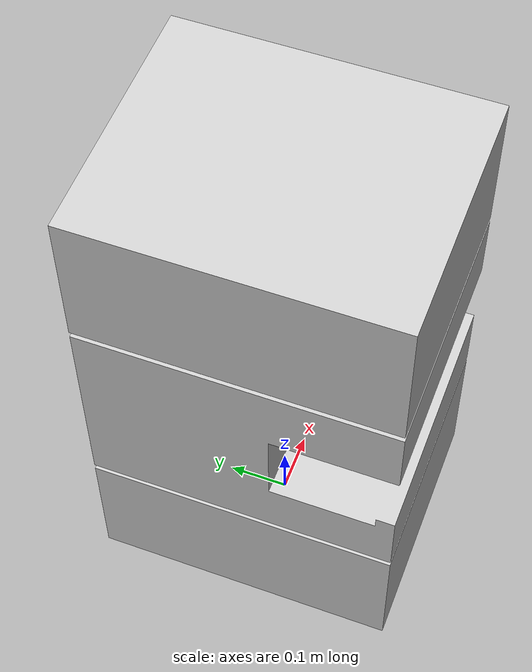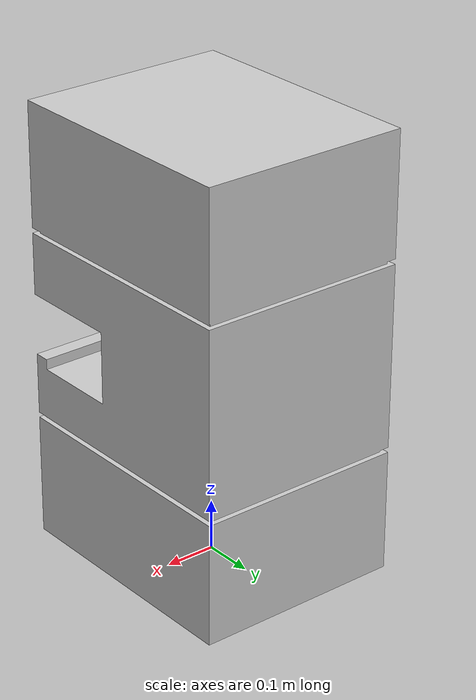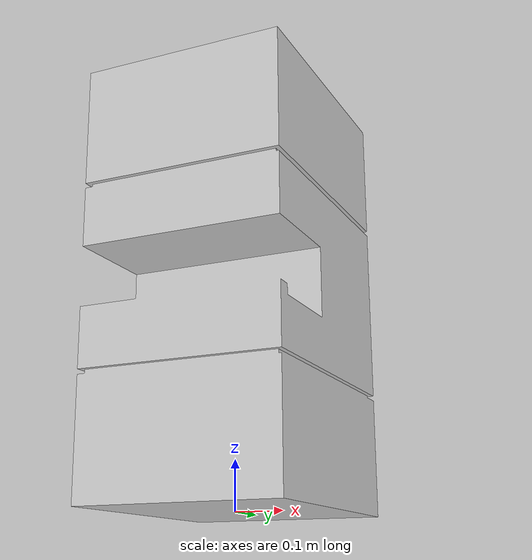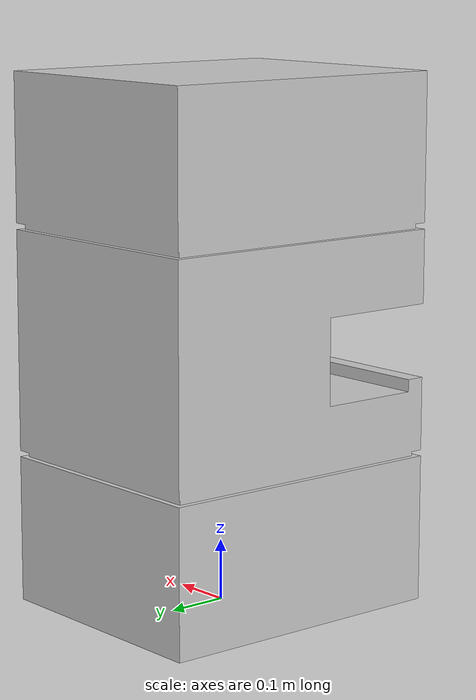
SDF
<?xml version="1.0" ?>
<sdf version="1.5">
  <model name="HPLC_box">
    <static>true</static>
    <link name="link">
      <visual name="visual">
        <geometry>
          <mesh>
            <uri>model://HPLC_box/meshes/HPLC_box.dae</uri>
          </mesh>
        </geometry>
      </visual>
      <!-- collision -->
      <collision name="collision">
        <geometry>
          <mesh>
            <uri>model://HPLC_box/meshes/HPLC_box.dae</uri>
          </mesh>
        </geometry>
        <surface>
          <friction>
            <ode>
              <mu>10</mu>
              <mu2>10</mu2>
            </ode>
          </friction>
        </surface>
      </collision>
    </link>
  </model>

</sdf>
